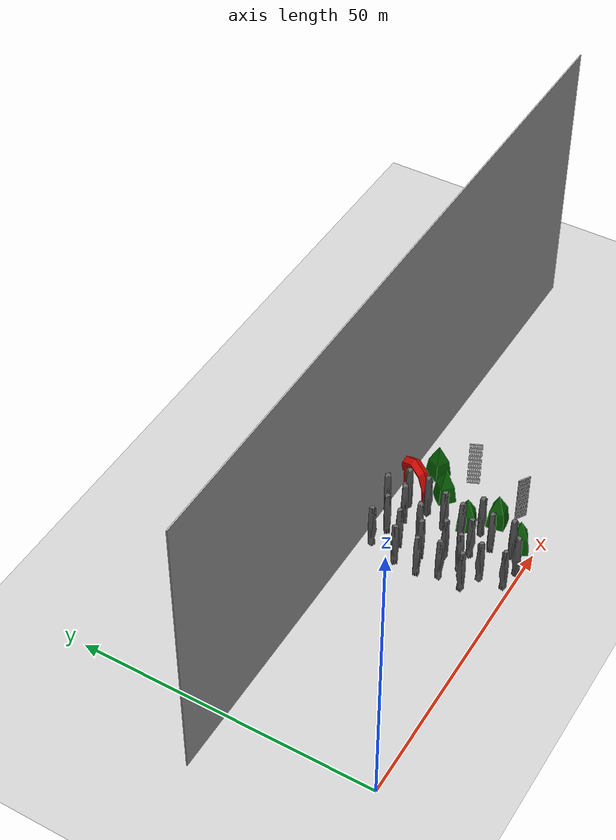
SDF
<sdf version="1.4">
 <world name="default">
  <model name="ground_plane">
   <static>1</static>
   <link name="link">
    <collision name="collision">
     <geometry><plane><normal>0 0 1</normal><size>1000 1000</size></plane></geometry>
     <surface>
      <contact><collide_bitmask>65535</collide_bitmask></contact>
      <friction><ode><mu>100</mu><mu2>50</mu2></ode></friction>
     </surface>
    </collision>
    <visual name="visual">
     <cast_shadows>0</cast_shadows>
     <geometry><plane><normal>0 0 1</normal><size>1000 1000</size></plane></geometry>
    </visual>
   </link>
  </model>
  <model name="wall_left">
   <static>1</static>
   <link name="link">
    <pose>0 0 25.0 0 0 0</pose>
    <collision name="collision"><geometry><box><size>120.0 0.2 50.0</size></box></geometry></collision>
    <visual name="visual">
     <cast_shadows>0</cast_shadows>
     <geometry><box><size>120.0 0.2 50.0</size></box></geometry>
    </visual>
   </link>
   <pose>50.0 25.0 0 0 0 0</pose>
  </model>
  <include><uri>model://sun</uri></include>
  <include>
   <name>columnSimple Stone137</name>
   <uri>model://Simple Stone</uri>
   <pose>38.337032318115234 6.780160903930664 0 0 0 1.42743520835</pose>
   <static>true</static>
  </include>
  <include>
   <name>columnSimple Stone138</name>
   <uri>model://Simple Stone</uri>
   <pose>38.71614456176758 10.71682357788086 0 0 0 2.97915440473</pose>
   <static>true</static>
  </include>
  <include>
   <name>columnSimple Stone139</name>
   <uri>model://Simple Stone</uri>
   <pose>37.602752685546875 14.038700103759766 0 0 0 3.27703906002</pose>
   <static>true</static>
  </include>
  <include>
   <name>columnSimple Stone140</name>
   <uri>model://Simple Stone</uri>
   <pose>37.886924743652344 18.09890365600586 0 0 0 0.803586006812</pose>
   <static>true</static>
  </include>
  <include>
   <name>columnSimple Stone141</name>
   <uri>model://Simple Stone</uri>
   <pose>39.45832443237305 23.0069580078125 0 0 0 2.72840981817</pose>
   <static>true</static>
  </include>
  <include>
   <name>columnSimple Stone146</name>
   <uri>model://Simple Stone</uri>
   <pose>41.908294677734375 1.2560462951660156 0 0 0 1.43354617562</pose>
   <static>true</static>
  </include>
  <include>
   <name>columnSimple Stone147</name>
   <uri>model://Simple Stone</uri>
   <pose>41.5335578918457 5.171281814575195 0 0 0 1.2834552548</pose>
   <static>true</static>
  </include>
  <include>
   <name>columnSimple Stone148</name>
   <uri>model://Simple Stone</uri>
   <pose>41.56290817260742 8.674659729003906 0 0 0 0.845883248142</pose>
   <static>true</static>
  </include>
  <include>
   <name>columnSimple Stone149</name>
   <uri>model://Simple Stone</uri>
   <pose>40.94342041015625 15.094375610351562 0 0 0 3.51402149547</pose>
   <static>true</static>
  </include>
  <include>
   <name>columnSimple Stone150</name>
   <uri>model://Simple Stone</uri>
   <pose>41.24809646606445 19.087364196777344 0 0 0 3.54048842093</pose>
   <static>true</static>
  </include>
  <include>
   <name>columnSimple Stone155</name>
   <uri>model://Simple Stone</uri>
   <pose>42.853477478027344 11.93179702758789 0 0 0 1.54143893147</pose>
   <static>true</static>
  </include>
  <include>
   <name>columnSimple Stone156</name>
   <uri>model://Simple Stone</uri>
   <pose>44.0707893371582 17.012054443359375 0 0 0 4.83347022844</pose>
   <static>true</static>
  </include>
  <include>
   <name>columnSimple Stone157</name>
   <uri>model://Simple Stone</uri>
   <pose>42.9152946472168 22.16875457763672 0 0 0 3.67317528828</pose>
   <static>true</static>
  </include>
  <include>
   <name>columnSimple Stone162</name>
   <uri>model://Simple Stone</uri>
   <pose>45.380226135253906 0.7867755889892578 0 0 0 6.01354195143</pose>
   <static>true</static>
  </include>
  <include>
   <name>columnSimple Stone163</name>
   <uri>model://Simple Stone</uri>
   <pose>45.064849853515625 8.570114135742188 0 0 0 2.56254983497</pose>
   <static>true</static>
  </include>
  <include>
   <name>columnSimple Stone164</name>
   <uri>model://Simple Stone</uri>
   <pose>46.17879104614258 20.894351959228516 0 0 0 5.31159408047</pose>
   <static>true</static>
  </include>
  <include>
   <name>columnSimple Stone165</name>
   <uri>model://Simple Stone</uri>
   <pose>46.77570343017578 24.34662628173828 0 0 0 5.39116950639</pose>
   <static>true</static>
  </include>
  <include>
   <name>columnSimple Stone171</name>
   <uri>model://Simple Stone</uri>
   <pose>48.2197380065918 2.8397045135498047 0 0 0 4.25920283867</pose>
   <static>true</static>
  </include>
  <include>
   <name>columnSimple Stone172</name>
   <uri>model://Simple Stone</uri>
   <pose>47.74230194091797 6.310522079467773 0 0 0 3.46047610965</pose>
   <static>true</static>
  </include>
  <include>
   <name>columnSimple Stone173</name>
   <uri>model://Simple Stone</uri>
   <pose>47.25852584838867 11.301834106445312 0 0 0 3.18972805812</pose>
   <static>true</static>
  </include>
  <include>
   <name>columnSimple Stone174</name>
   <uri>model://Simple Stone</uri>
   <pose>47.93610763549805 14.739185333251953 0 0 0 2.76592825041</pose>
   <static>true</static>
  </include>
  <include>
   <name>columnSimple Stone178</name>
   <uri>model://Simple Stone</uri>
   <pose>49.988216400146484 9.105632781982422 0 0 0 4.45431546304</pose>
   <static>true</static>
  </include>
  <include>
   <name>columnSimple Stone179</name>
   <uri>model://Simple Stone</uri>
   <pose>49.50579833984375 18.428050994873047 0 0 0 4.30566894028</pose>
   <static>true</static>
  </include>
  <include>
   <name>columnSimple Stone180</name>
   <uri>model://Simple Stone</uri>
   <pose>49.52526092529297 21.931495666503906 0 0 0 5.78498138234</pose>
   <static>true</static>
  </include>
  <include>
   <name>mixedSimple Pyramid5</name>
   <uri>model://Simple Pyramid</uri>
   <pose>50.496312230825424 2.6751174926757812 0 0 0 1.24368050558</pose>
   <static>true</static>
  </include>
  <include>
   <name>mixedSimple Pyramid6</name>
   <uri>model://Simple Pyramid</uri>
   <pose>50.495293498039246 11.923988342285156 0 0 0 2.70163425073</pose>
   <static>true</static>
  </include>
  <include>
   <name>mixedSimple U7</name>
   <uri>model://Simple U</uri>
   <pose>52.47503471374512 22.494686126708984 0 0 0 4.30068979337</pose>
   <static>true</static>
  </include>
  <include>
   <name>mixedSimple Pyramid12</name>
   <uri>model://Simple Pyramid</uri>
   <pose>53.57568311691284 7.979213714599609 0 0 0 5.64666803519</pose>
   <static>true</static>
  </include>
  <include>
   <name>mixedSimple Pyramid13</name>
   <uri>model://Simple Pyramid</uri>
   <pose>54.17037057876587 17.785560607910156 0 0 0 0.027510843912</pose>
   <static>true</static>
  </include>
  <include>
   <name>mixedfence_high16</name>
   <uri>model://fence_high</uri>
   <pose>57.310834884643555 4.647748947143555 0 0 0 1.00575900101</pose>
   <static>true</static>
  </include>
  <include>
   <name>mixedfence_high18</name>
   <uri>model://fence_high</uri>
   <pose>58.90962219238281 16.17636489868164 0 0 0 3.56967158627</pose>
   <static>true</static>
  </include>
  <include>
   <name>mixedSimple Pyramid19</name>
   <uri>model://Simple Pyramid</uri>
   <pose>58.283141136169434 21.141998291015625 0 0 0 1.90035236637</pose>
   <static>true</static>
  </include>
 </world>
</sdf>
